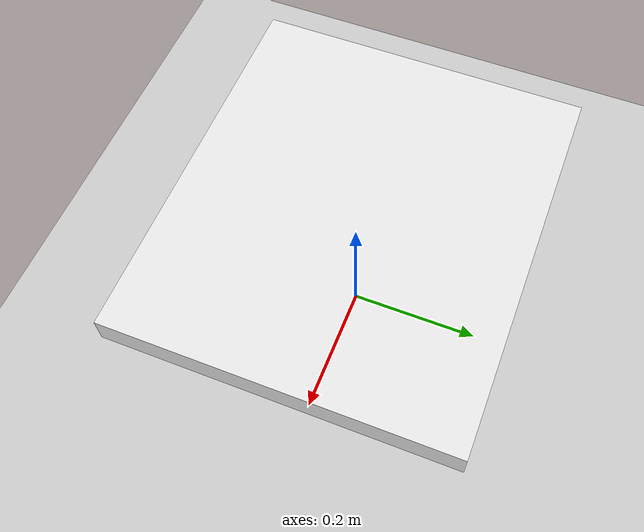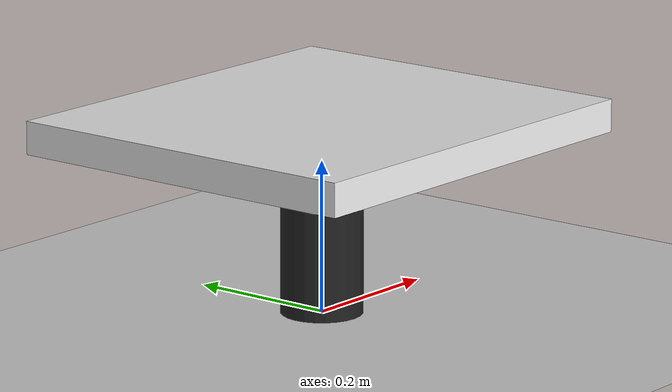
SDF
<sdf version="1.7">
 <world name="default">
  <gravity>0 0 -9.8</gravity>
  <light name="sun" type="directional">
   <pose>0 0 10 0 -0 0</pose>
   <diffuse>0.8 0.8 0.8 1</diffuse>
   <specular>0.2 0.2 0.2 1</specular>
   <attenuation>
    <range>1000</range>
    <constant>0.9</constant>
    <linear>0.01</linear>
    <quadratic>0.001</quadratic>
   </attenuation>
   <direction>-0.5 0.1 -0.9</direction>
   <spot><inner_angle>0</inner_angle><outer_angle>0</outer_angle><falloff>0</falloff></spot>
  </light>
  <model name="ground_plane">
   <static>1</static>
   <link name="link">
    <collision name="collision">
     <geometry><plane><normal>0 0 1</normal><size>100 100</size></plane></geometry>
     <surface>
      <contact><collide_bitmask>65535</collide_bitmask></contact>
      <friction><ode><mu>100</mu><mu2>50</mu2></ode></friction>
     </surface>
    </collision>
    <visual name="visual">
     <cast_shadows>0</cast_shadows>
     <geometry><plane><normal>0 0 1</normal><size>100 100</size></plane></geometry>
     <material>
      <script><uri>file://media/materials/scripts/gazebo.material</uri><name>Gazebo/Grey</name></script>
     </material>
    </visual>
   </link>
  </model>
  <magnetic_field>6e-06 2.3e-05 -4.2e-05</magnetic_field>
  <atmosphere type="adiabatic"/>
  <physics type="ode">
   <max_step_size>0.001</max_step_size>
   <real_time_factor>1</real_time_factor>
   <real_time_update_rate>1000</real_time_update_rate>
  </physics>
  <scene><ambient>0.4 0.4 0.4 1</ambient><background>0.7 0.7 0.7 1</background><shadows>1</shadows></scene>
  <spherical_coordinates>
   <surface_model>EARTH_WGS84</surface_model>
   <latitude_deg>0</latitude_deg>
   <longitude_deg>0</longitude_deg>
   <elevation>0</elevation>
   <heading_deg>0</heading_deg>
  </spherical_coordinates>
  <model name="unit_cylinder">
   <pose>-3e-05 0.00015 0.11164 1e-06 -1e-06 0.000178</pose>
   <link name="link">
    <inertial>
     <mass>1</mass>
     <inertia><ixx>0.145833</ixx><ixy>0</ixy><ixz>0</ixz><iyy>0.145833</iyy><iyz>0</iyz><izz>0.125</izz></inertia>
    </inertial>
    <collision name="collision">
     <geometry><cylinder><radius>0.0537951</radius><length>0.223375</length></cylinder></geometry>
    </collision>
    <visual name="visual">
     <geometry><cylinder><radius>0.0537951</radius><length>0.223375</length></cylinder></geometry>
     <material>
      <script><name>Gazebo/Black</name><uri>file://media/materials/scripts/gazebo.material</uri></script>
     </material>
    </visual>
   </link>
  </model>
  <model name="unit_box">
   <pose>0.00015 -0.000281 0.245123 0.000626 0.000766 0.000384</pose>
   <link name="link">
    <inertial>
     <mass>1</mass>
     <inertia>
      <ixx>0.166667</ixx>
      <ixy>0</ixy>
      <ixz>0</ixz>
      <iyy>0.166667</iyy>
      <iyz>0</iyz>
      <izz>0.166667</izz>
     </inertia>
    </inertial>
    <collision name="collision">
     <geometry><box><size>0.566678 0.498762 0.043485</size></box></geometry>
    </collision>
    <visual name="visual">
     <geometry><box><size>0.566678 0.498762 0.043485</size></box></geometry>
     <material>
      <script><name>Gazebo/White</name><uri>file://media/materials/scripts/gazebo.material</uri></script>
     </material>
    </visual>
   </link>
  </model>
 </world>
</sdf>
